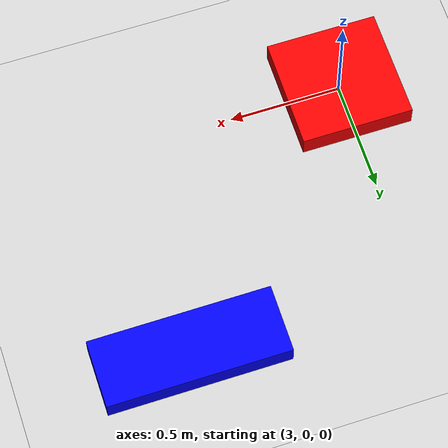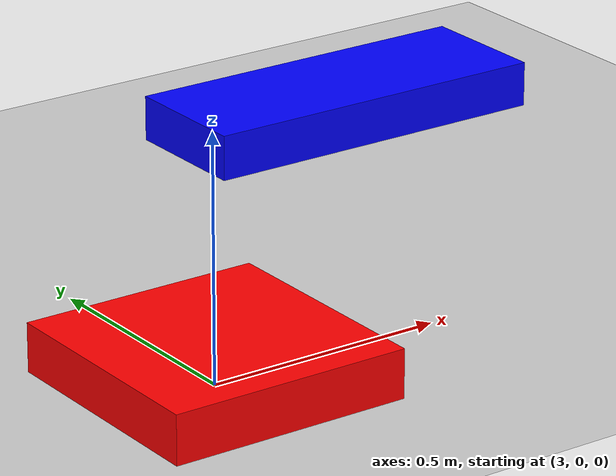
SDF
<?xml version="1.0"?>
<sdf version="1.6">
  <world name="obstacle_world">
    <!-- Light and ground -->
    <include><uri>model://sun</uri></include>
    <include><uri>model://ground_plane</uri></include>

    <!-- Some box obstacles -->
    <model name="box1">
      <pose>3 0 0.05 0 0 0</pose>
      <static>true</static>
      <link name="link">
        <visual name="visual">
          <geometry><box><size>0.5 0.5 0.1</size></box></geometry>
          <material><ambient>1 0 0 1</ambient></material>
        </visual>
        <collision name="collision">
          <geometry><box><size>0.5 0.5 0.1</size></box></geometry>
        </collision>
      </link>
    </model>

    <model name="box2">
      <pose>4 1 0.05 0 0 0</pose>
      <static>true</static>
      <link name="link">
        <visual name="visual">
          <geometry><box><size>0.8 0.3 0.1</size></box></geometry>
          <material><ambient>0 0 1 1</ambient></material>
        </visual>
        <collision name="collision">
          <geometry><box><size>0.8 0.3 0.1</size></box></geometry>
        </collision>
      </link>
    </model>

    <!-- Physics -->
    <physics type="ode">
      <real_time_update_rate>1000</real_time_update_rate>
    </physics>
  </world>
</sdf>
